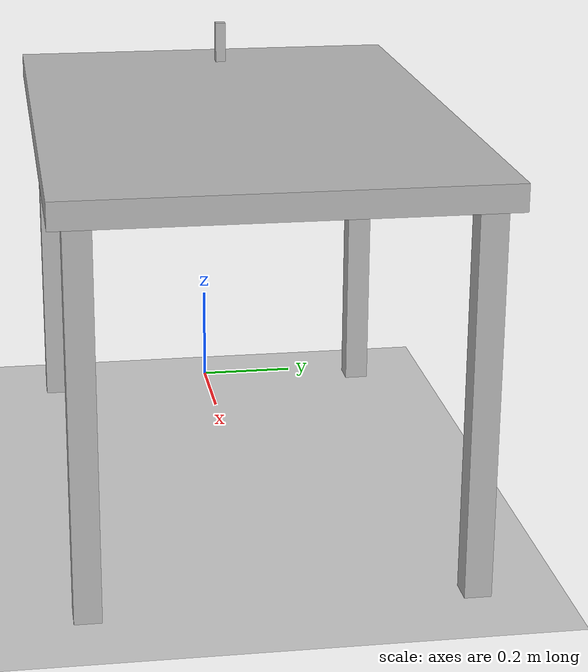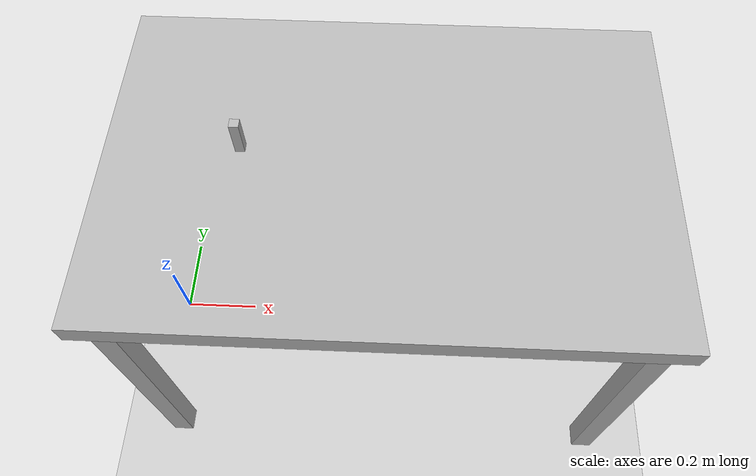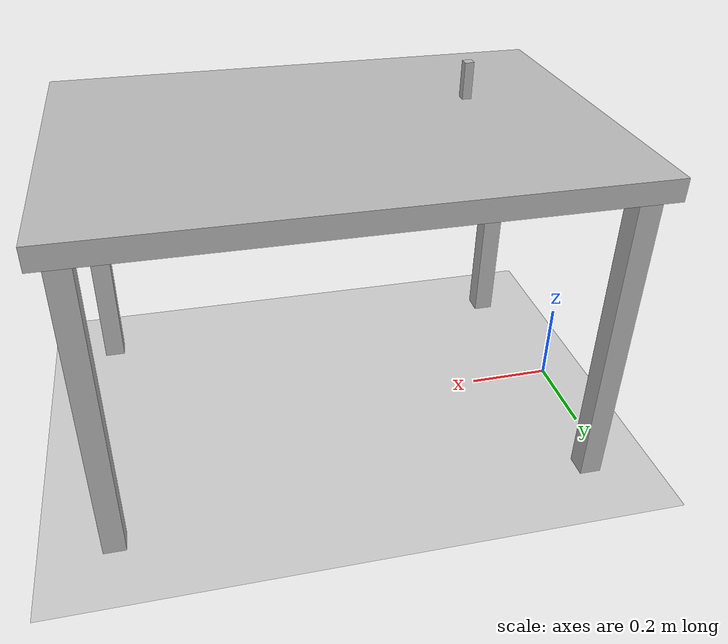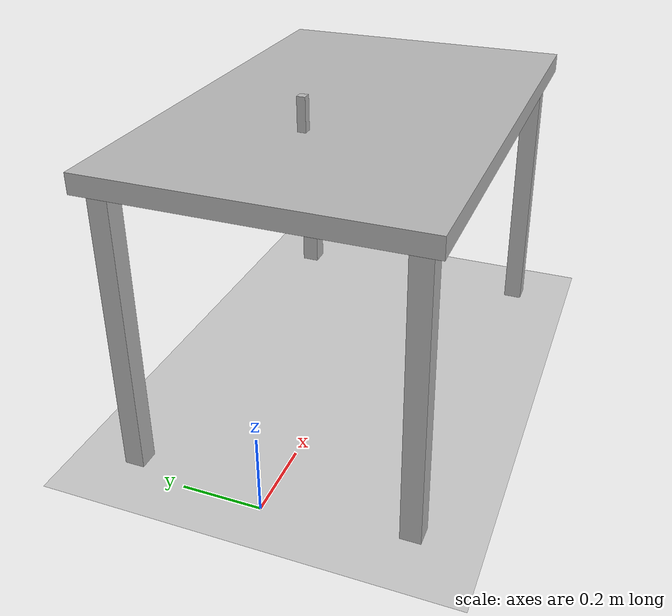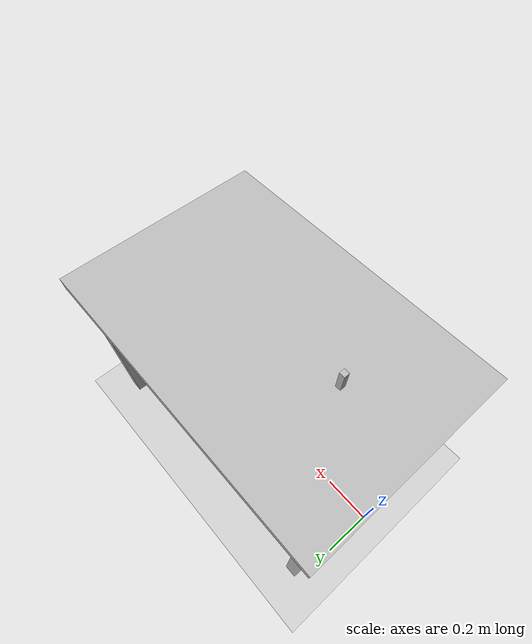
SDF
<sdf version="1.9">
  <world name="lab">

    <!-- Light (replaces model://sun) -->
    <light name="sun" type="directional">
      <pose>0 0 10 0 0 0</pose>
      <direction>-0.5 0.1 -1</direction>
      <diffuse>1 1 1 1</diffuse>
      <specular>0.1 0.1 0.1 1</specular>
      <attenuation>
        <range>100</range>
        <constant>0.9</constant>
        <linear>0.01</linear>
        <quadratic>0.001</quadratic>
      </attenuation>
      <cast_shadows>true</cast_shadows>
    </light>

    <!-- Ground plane (replaces model://ground_plane) -->
    <model name="ground">
      <static>true</static>
      <link name="ground_link">
        <collision name="collision">
          <geometry>
            <plane>
              <normal>0 0 1</normal>
              <size>50 50</size>
            </plane>
          </geometry>
        </collision>
        <visual name="visual">
          <geometry>
            <plane>
              <normal>0 0 1</normal>
              <size>50 50</size>
            </plane>
          </geometry>
        </visual>
      </link>
    </model>

    <!-- Table -->
    <include>
      <uri>model://table</uri>
      <pose>0.6 0 0 0 0 0</pose>
    </include>

    <!-- Camera -->
    <include>
      <uri>model://realsense_rgbd</uri>
      <pose>0.3 0 0.85 0 -1.57 0</pose>
    </include>

  </world>
</sdf>

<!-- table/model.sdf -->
<sdf version="1.9">
  <model name="table">
    <static>true</static>
    <link name="link">

      <!-- משטח -->
      <collision name="top_col">
        <pose>0 0 0.75 0 0 0</pose>
        <geometry><box><size>1.2 0.8 0.05</size></box></geometry>
      </collision>
      <visual name="top_vis">
        <pose>0 0 0.75 0 0 0</pose>
        <geometry><box><size>1.2 0.8 0.05</size></box></geometry>
      </visual>

      <!-- 4 רגליים (אופציונלי אבל נחמד) -->
      <collision name="leg1_col">
        <pose> 0.55  0.35 0.375 0 0 0</pose>
        <geometry><box><size>0.05 0.05 0.75</size></box></geometry>
      </collision>
      <visual name="leg1_vis">
        <pose> 0.55  0.35 0.375 0 0 0</pose>
        <geometry><box><size>0.05 0.05 0.75</size></box></geometry>
      </visual>

      <collision name="leg2_col">
        <pose> 0.55 -0.35 0.375 0 0 0</pose>
        <geometry><box><size>0.05 0.05 0.75</size></box></geometry>
      </collision>
      <visual name="leg2_vis">
        <pose> 0.55 -0.35 0.375 0 0 0</pose>
        <geometry><box><size>0.05 0.05 0.75</size></box></geometry>
      </visual>

      <collision name="leg3_col">
        <pose>-0.55  0.35 0.375 0 0 0</pose>
        <geometry><box><size>0.05 0.05 0.75</size></box></geometry>
      </collision>
      <visual name="leg3_vis">
        <pose>-0.55  0.35 0.375 0 0 0</pose>
        <geometry><box><size>0.05 0.05 0.75</size></box></geometry>
      </visual>

      <collision name="leg4_col">
        <pose>-0.55 -0.35 0.375 0 0 0</pose>
        <geometry><box><size>0.05 0.05 0.75</size></box></geometry>
      </collision>
      <visual name="leg4_vis">
        <pose>-0.55 -0.35 0.375 0 0 0</pose>
        <geometry><box><size>0.05 0.05 0.75</size></box></geometry>
      </visual>

    </link>
  </model>
</sdf>

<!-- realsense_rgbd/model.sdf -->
<sdf version="1.9">
  <model name="realsense_rgbd">
    <static>true</static>

    <link name="camera_link">
      <!-- גוף מצלמה קטן -->
      <visual name="body">
        <geometry><box><size>0.08 0.02 0.02</size></box></geometry>
      </visual>

      <sensor name="rgbd_camera" type="rgbd_camera">
        <camera>
          <horizontal_fov>1.25</horizontal_fov>
          <image>
            <width>640</width>
            <height>480</height>
          </image>
          <clip>
            <near>0.3</near>
            <far>8.0</far>
          </clip>
          <optical_frame_id>camera_link</optical_frame_id>
        </camera>

        <always_on>1</always_on>
        <update_rate>20</update_rate>
        <visualize>true</visualize>

        <!-- זה "שם בסיס" לטופיקים בתוך Gazebo -->
        <topic>camera</topic>
        <gz_frame_id>camera_link</gz_frame_id>
      </sensor>
    </link>
  </model>
</sdf>
